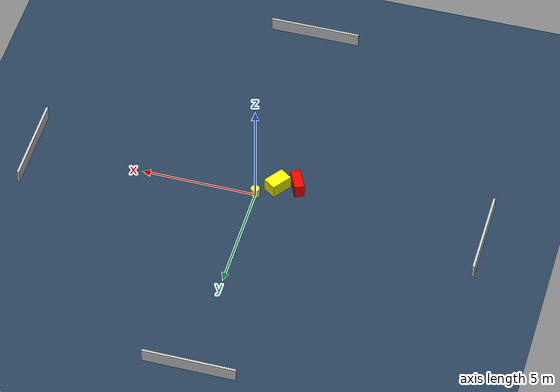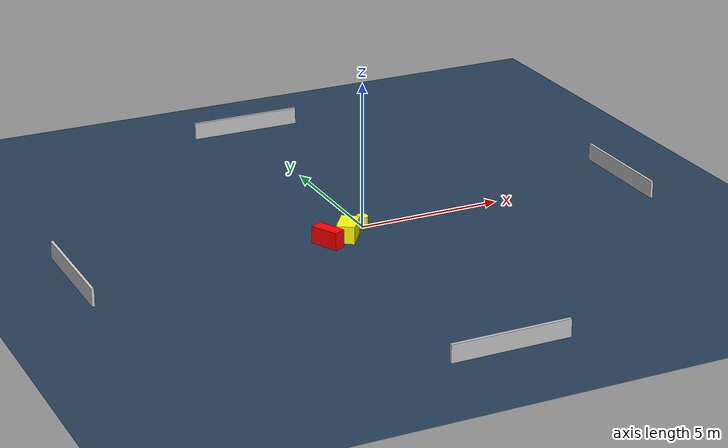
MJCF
<?xml version="1.0" ?>
<mujoco model="generated_environment">
  <option timestep="0.01" integrator="RK4" cone="elliptic"/>
  <default>
    <geom density="1"/>
  </default>
  <asset>
    <texture builtin="gradient" height="3072" name="skybox" rgb1="0.3 0.5 0.7" rgb2="0 0 0" type="skybox" width="512"/>
    <texture builtin="checker" height="300" name="groundplane" rgb1="0.2 0.3 0.4" rgb2="0.1 0.2 0.3" type="2d" width="300"/>
    <material name="groundplane" reflectance="0.2" texrepeat="5 5" texture="groundplane"/>
  </asset>
  <worldbody>
    <light dir="0 0 -1" directional="true" pos="0 0 1.5"/>
    <geom condim="3" friction="0.5 0.005 0.001" material="groundplane" name="floor" pos="0 0 0" size="0 0 0.05" type="plane"/>
    <body name="walls">
      <geom name="wall_1" condim="4" pos="-10.0 0.0 0.3" rgba="0.800000011920929 0.800000011920929 0.800000011920929 1.0" size="0.05 2.0 0.3" type="box"/>
      <geom name="wall_2" condim="4" pos="10.0 0.0 0.3" rgba="0.800000011920929 0.800000011920929 0.800000011920929 1.0" size="0.05 2.0 0.3" type="box"/>
      <geom name="wall_3" condim="4" pos="0.0 -10.0 0.3" rgba="0.800000011920929 0.800000011920929 0.800000011920929 1.0" size="2.0 0.05 0.3" type="box"/>
      <geom name="wall_4" condim="4" pos="0.0 10.0 0.3" rgba="0.800000011920929 0.800000011920929 0.800000011920929 1.0" size="2.0 0.05 0.3" type="box"/>
    </body>
    <body name="robot">
      <joint name="joint_x" type="slide" pos="0 0 0" axis="1 0 0"/>
      <joint name="joint_y" type="slide" pos="0 0 0" axis="0 1 0"/>
      <geom name="robot" type="cylinder" pos="0.0 0.0 0.2" size="0.2 0.2 0.0" mass="5.0" friction="1.0 0.005 0.0001" condim="4" rgba="1.0 1.0 0.0 1.0"/>
    </body>
    <body name="obstacle_1_movable">
      <geom name="obstacle_1_movable" condim="4" pos="-0.8178958372601911 -0.6351040417295873 0.3" euler="0 0 54.65252317736415" friction="0.0 0.005 0.001" rgba="1.0 1.0 0.0 1.0" size="0.48511074271834653 0.30782884296201984 0.3" type="box" mass="0.1"/>
      <joint type="free"/>
    </body>
    <body name="obstacle_2_static">
      <geom name="obstacle_2_static" condim="4" pos="-1.6369549040329987 -0.8523273453675264 0.3" euler="0 0 25.27956031495805" friction="0.0 0.005 0.001" rgba="1.0 0.0 0.0 1.0" size="0.21277752087486734 0.5075092330685566 0.3" type="box"/>
    </body>
  </worldbody>
  <actuator>
    <motor name="actuator_x" joint="joint_x" gear="1" ctrlrange="-1 1"/>
    <motor name="actuator_y" joint="joint_y" gear="1" ctrlrange="-1 1"/>
  </actuator>
</mujoco>
